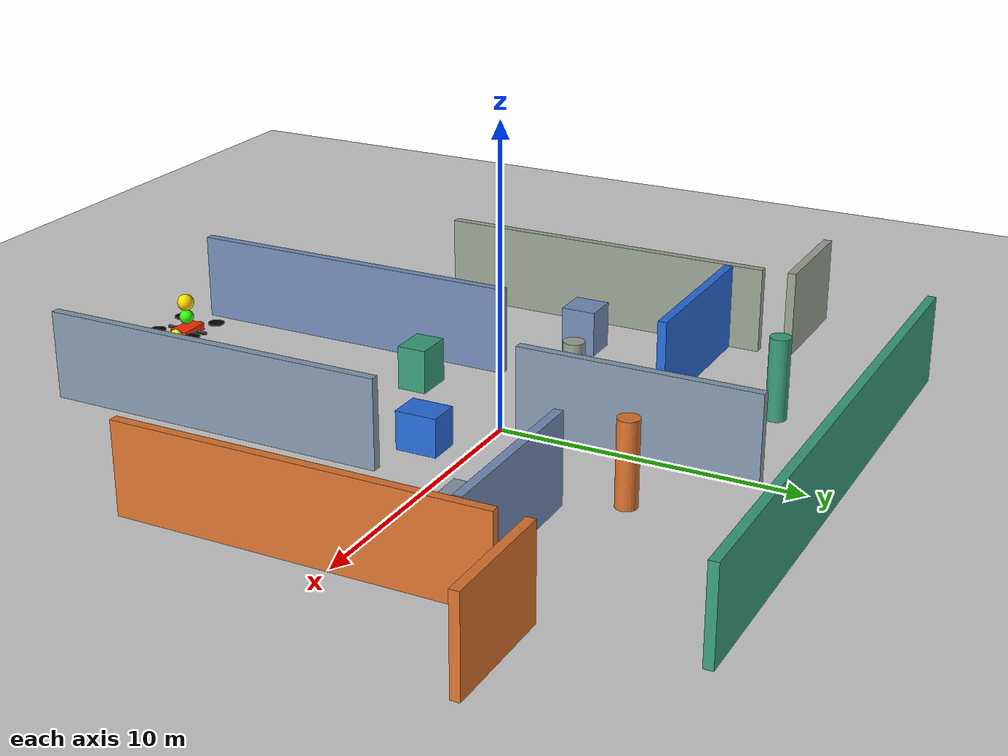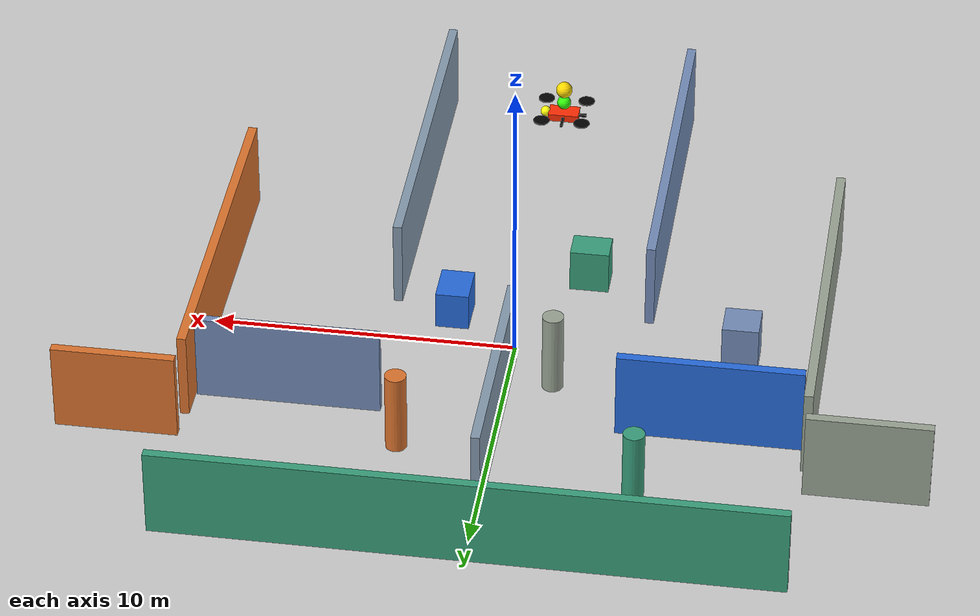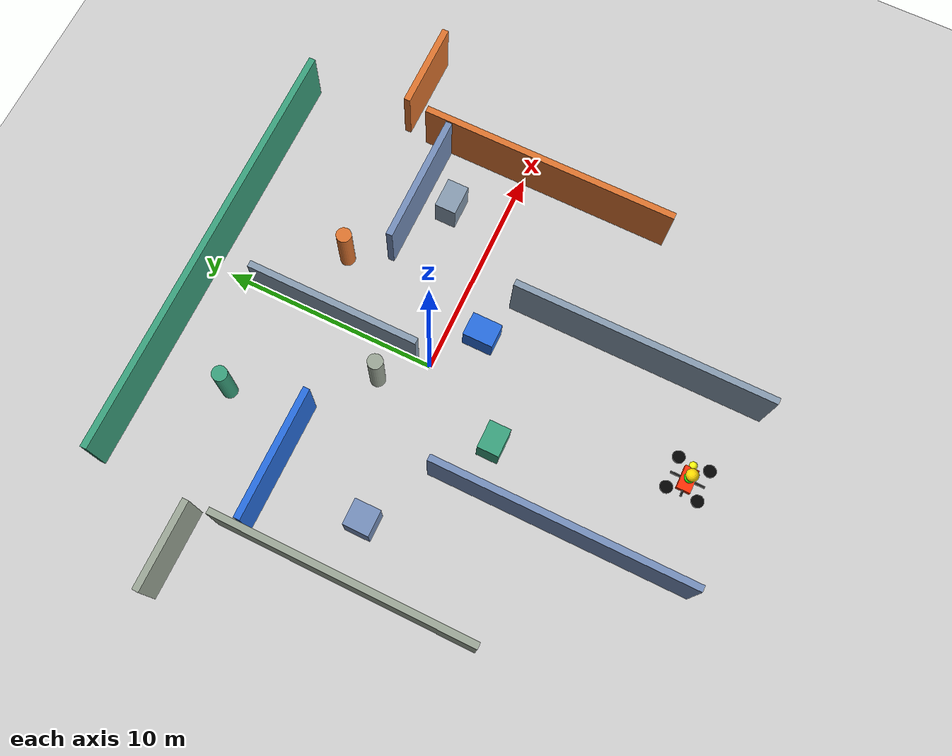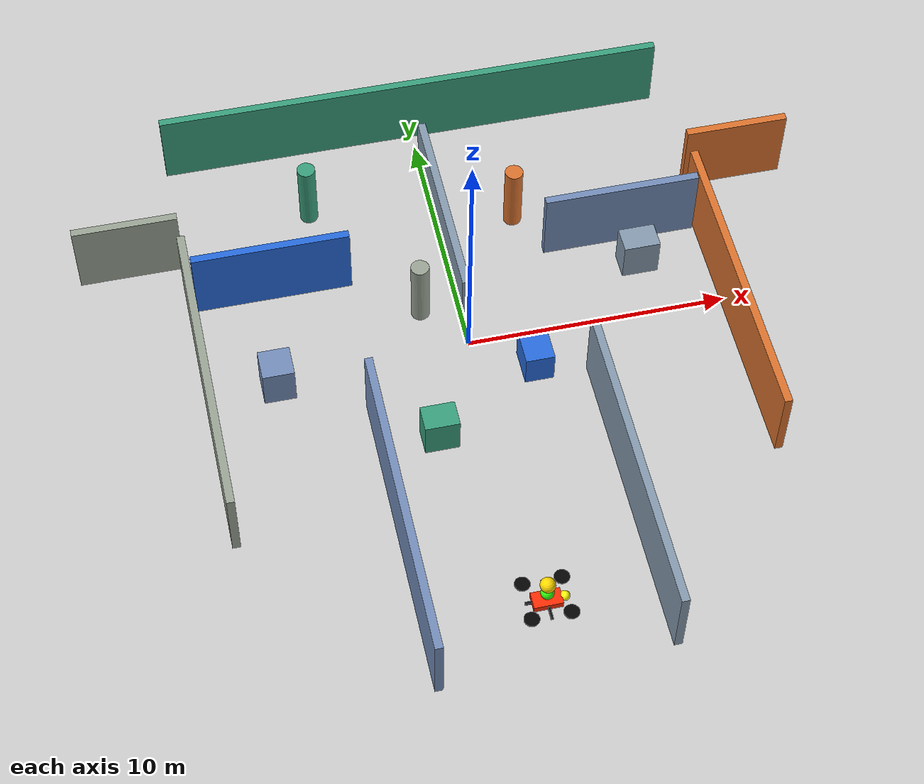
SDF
<?xml version='1.0' encoding='utf-8'?>
<sdf version="1.6">
  <world name="fuel_exploration_large_aligned">
    <include>
      <uri>model://sun</uri>
    </include>
    <include>
      <uri>model://ground_plane</uri>
    </include>
    <model name="south_corridor_left_wall">
      <static>true</static>
      <pose>-4.2 -8 1.5 0 0 0</pose>
      <link name="link">
        <collision name="collision">
          <geometry>
            <box>
              <size>0.3 12 3</size>
            </box>
          </geometry>
        </collision>
        <visual name="visual">
          <geometry>
            <box>
              <size>0.3 12 3</size>
            </box>
          </geometry>
          <material>
            <ambient>0.45 0.55 0.72 1</ambient>
            <diffuse>0.45 0.55 0.72 1</diffuse>
          </material>
        </visual>
      </link>
    </model>
    <model name="south_corridor_right_wall">
      <static>true</static>
      <pose>4.2 -8 1.5 0 0 0</pose>
      <link name="link">
        <collision name="collision">
          <geometry>
            <box>
              <size>0.3 12 3</size>
            </box>
          </geometry>
        </collision>
        <visual name="visual">
          <geometry>
            <box>
              <size>0.3 12 3</size>
            </box>
          </geometry>
          <material>
            <ambient>0.52 0.6 0.68 1</ambient>
            <diffuse>0.52 0.6 0.68 1</diffuse>
          </material>
        </visual>
      </link>
    </model>
    <model name="west_room_outer_wall">
      <static>true</static>
      <pose>-10 -1 1.5 0 0 0</pose>
      <link name="link">
        <collision name="collision">
          <geometry>
            <box>
              <size>0.3 12 3</size>
            </box>
          </geometry>
        </collision>
        <visual name="visual">
          <geometry>
            <box>
              <size>0.3 12 3</size>
            </box>
          </geometry>
          <material>
            <ambient>0.6 0.64 0.58 1</ambient>
            <diffuse>0.6 0.64 0.58 1</diffuse>
          </material>
        </visual>
      </link>
    </model>
    <model name="east_room_outer_wall">
      <static>true</static>
      <pose>10 -1 1.5 0 0 0</pose>
      <link name="link">
        <collision name="collision">
          <geometry>
            <box>
              <size>0.3 12 3</size>
            </box>
          </geometry>
        </collision>
        <visual name="visual">
          <geometry>
            <box>
              <size>0.3 12 3</size>
            </box>
          </geometry>
          <material>
            <ambient>0.86 0.45 0.18 1</ambient>
            <diffuse>0.86 0.45 0.18 1</diffuse>
          </material>
        </visual>
      </link>
    </model>
    <model name="north_back_wall">
      <static>true</static>
      <pose>0 10.8 1.5 0 0 0</pose>
      <link name="link">
        <collision name="collision">
          <geometry>
            <box>
              <size>20 0.3 3</size>
            </box>
          </geometry>
        </collision>
        <visual name="visual">
          <geometry>
            <box>
              <size>20 0.3 3</size>
            </box>
          </geometry>
          <material>
            <ambient>0.22 0.62 0.48 1</ambient>
            <diffuse>0.22 0.62 0.48 1</diffuse>
          </material>
        </visual>
      </link>
    </model>
    <model name="west_room_inner_wall">
      <static>true</static>
      <pose>-6.8 3.8 1.5 0 0 0</pose>
      <link name="link">
        <collision name="collision">
          <geometry>
            <box>
              <size>6 0.3 3</size>
            </box>
          </geometry>
        </collision>
        <visual name="visual">
          <geometry>
            <box>
              <size>6 0.3 3</size>
            </box>
          </geometry>
          <material>
            <ambient>0.15 0.42 0.86 1</ambient>
            <diffuse>0.15 0.42 0.86 1</diffuse>
          </material>
        </visual>
      </link>
    </model>
    <model name="east_room_inner_wall">
      <static>true</static>
      <pose>6.8 3.8 1.5 0 0 0</pose>
      <link name="link">
        <collision name="collision">
          <geometry>
            <box>
              <size>6 0.3 3</size>
            </box>
          </geometry>
        </collision>
        <visual name="visual">
          <geometry>
            <box>
              <size>6 0.3 3</size>
            </box>
          </geometry>
          <material>
            <ambient>0.45 0.55 0.72 1</ambient>
            <diffuse>0.45 0.55 0.72 1</diffuse>
          </material>
        </visual>
      </link>
    </model>
    <model name="center_room_divider">
      <static>true</static>
      <pose>0 4.6 1.5 0 0 0</pose>
      <link name="link">
        <collision name="collision">
          <geometry>
            <box>
              <size>0.3 8 3</size>
            </box>
          </geometry>
        </collision>
        <visual name="visual">
          <geometry>
            <box>
              <size>0.3 8 3</size>
            </box>
          </geometry>
          <material>
            <ambient>0.52 0.6 0.68 1</ambient>
            <diffuse>0.52 0.6 0.68 1</diffuse>
          </material>
        </visual>
      </link>
    </model>
    <model name="west_dead_end_wall">
      <static>true</static>
      <pose>-12 6 1.5 0 0 0</pose>
      <link name="link">
        <collision name="collision">
          <geometry>
            <box>
              <size>4 0.3 3</size>
            </box>
          </geometry>
        </collision>
        <visual name="visual">
          <geometry>
            <box>
              <size>4 0.3 3</size>
            </box>
          </geometry>
          <material>
            <ambient>0.6 0.64 0.58 1</ambient>
            <diffuse>0.6 0.64 0.58 1</diffuse>
          </material>
        </visual>
      </link>
    </model>
    <model name="east_dead_end_wall">
      <static>true</static>
      <pose>12 6 1.5 0 0 0</pose>
      <link name="link">
        <collision name="collision">
          <geometry>
            <box>
              <size>4 0.3 3</size>
            </box>
          </geometry>
        </collision>
        <visual name="visual">
          <geometry>
            <box>
              <size>4 0.3 3</size>
            </box>
          </geometry>
          <material>
            <ambient>0.86 0.45 0.18 1</ambient>
            <diffuse>0.86 0.45 0.18 1</diffuse>
          </material>
        </visual>
      </link>
    </model>
    <model name="box_obstacle_01">
      <static>true</static>
      <pose>-2 -4 0.75 0 0 0</pose>
      <link name="link">
        <collision name="collision">
          <geometry>
            <box>
              <size>1.3 1 1.5</size>
            </box>
          </geometry>
        </collision>
        <visual name="visual">
          <geometry>
            <box>
              <size>1.3 1 1.5</size>
            </box>
          </geometry>
          <material>
            <ambient>0.22 0.62 0.48 1</ambient>
            <diffuse>0.22 0.62 0.48 1</diffuse>
          </material>
        </visual>
      </link>
    </model>
    <model name="box_obstacle_02">
      <static>true</static>
      <pose>2.2 -1.5 0.65 0 0 0</pose>
      <link name="link">
        <collision name="collision">
          <geometry>
            <box>
              <size>1.1 1.4 1.3</size>
            </box>
          </geometry>
        </collision>
        <visual name="visual">
          <geometry>
            <box>
              <size>1.1 1.4 1.3</size>
            </box>
          </geometry>
          <material>
            <ambient>0.15 0.42 0.86 1</ambient>
            <diffuse>0.15 0.42 0.86 1</diffuse>
          </material>
        </visual>
      </link>
    </model>
    <model name="box_obstacle_03">
      <static>true</static>
      <pose>-7.4 -0.5 0.8 0 0 0</pose>
      <link name="link">
        <collision name="collision">
          <geometry>
            <box>
              <size>1.2 1.2 1.6</size>
            </box>
          </geometry>
        </collision>
        <visual name="visual">
          <geometry>
            <box>
              <size>1.2 1.2 1.6</size>
            </box>
          </geometry>
          <material>
            <ambient>0.45 0.55 0.72 1</ambient>
            <diffuse>0.45 0.55 0.72 1</diffuse>
          </material>
        </visual>
      </link>
    </model>
    <model name="box_obstacle_04">
      <static>true</static>
      <pose>7.2 2.4 0.8 0 0 0</pose>
      <link name="link">
        <collision name="collision">
          <geometry>
            <box>
              <size>1.4 1 1.6</size>
            </box>
          </geometry>
        </collision>
        <visual name="visual">
          <geometry>
            <box>
              <size>1.4 1 1.6</size>
            </box>
          </geometry>
          <material>
            <ambient>0.52 0.6 0.68 1</ambient>
            <diffuse>0.52 0.6 0.68 1</diffuse>
          </material>
        </visual>
      </link>
    </model>
    <model name="pillar_01">
      <static>true</static>
      <pose>-1.5 1.8 1.4 0 0 0</pose>
      <link name="link">
        <collision name="collision">
          <geometry>
            <cylinder>
              <radius>0.35</radius>
              <length>2.8</length>
            </cylinder>
          </geometry>
        </collision>
        <visual name="visual">
          <geometry>
            <cylinder>
              <radius>0.35</radius>
              <length>2.8</length>
            </cylinder>
          </geometry>
          <material>
            <ambient>0.6 0.64 0.58 1</ambient>
            <diffuse>0.6 0.64 0.58 1</diffuse>
          </material>
        </visual>
      </link>
    </model>
    <model name="pillar_02">
      <static>true</static>
      <pose>3 5.6 1.4 0 0 0</pose>
      <link name="link">
        <collision name="collision">
          <geometry>
            <cylinder>
              <radius>0.35</radius>
              <length>2.8</length>
            </cylinder>
          </geometry>
        </collision>
        <visual name="visual">
          <geometry>
            <cylinder>
              <radius>0.35</radius>
              <length>2.8</length>
            </cylinder>
          </geometry>
          <material>
            <ambient>0.86 0.45 0.18 1</ambient>
            <diffuse>0.86 0.45 0.18 1</diffuse>
          </material>
        </visual>
      </link>
    </model>
    <model name="pillar_03">
      <static>true</static>
      <pose>-4.8 7.4 1.4 0 0 0</pose>
      <link name="link">
        <collision name="collision">
          <geometry>
            <cylinder>
              <radius>0.35</radius>
              <length>2.8</length>
            </cylinder>
          </geometry>
        </collision>
        <visual name="visual">
          <geometry>
            <cylinder>
              <radius>0.35</radius>
              <length>2.8</length>
            </cylinder>
          </geometry>
          <material>
            <ambient>0.22 0.62 0.48 1</ambient>
            <diffuse>0.22 0.62 0.48 1</diffuse>
          </material>
        </visual>
      </link>
    </model>
    <include>
      <name>fuel_simple_uav</name>
      <uri>model://simple_uav</uri>
      <pose>0 -12 1.2 0 0 0</pose>
    </include>
    <model name="fuel_simple_uav_beacon">
      <static>true</static>
      <pose>0 -12 2.2 0 0 0</pose>
      <link name="link">
        <visual name="beacon_visual">
          <geometry>
            <sphere>
              <radius>0.28</radius>
            </sphere>
          </geometry>
          <material>
            <ambient>1 0.85 0 1</ambient>
            <diffuse>1 0.85 0 1</diffuse>
          </material>
        </visual>
      </link>
    </model>
  </world>
</sdf>

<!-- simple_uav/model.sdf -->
<sdf version="1.6">
  <model name="simple_uav">
    <static>false</static>
    <link name="base_link">
      <pose>0 0 0 0 0 0</pose>
      <gravity>false</gravity>
      <kinematic>true</kinematic>
      <inertial>
        <mass>0.2</mass>
        <inertia><ixx>0.004</ixx><iyy>0.004</iyy><izz>0.008</izz></inertia>
      </inertial>
      <collision name="body_collision">
        <geometry><box><size>0.32 0.22 0.10</size></box></geometry>
      </collision>
      <visual name="body_visual">
        <geometry><box><size>1.05 0.62 0.26</size></box></geometry>
        <material>
          <ambient>1.00 0.18 0.02 1</ambient>
          <diffuse>1.00 0.18 0.02 1</diffuse>
        </material>
      </visual>
      <visual name="front_sensor_visual">
        <pose>0.64 0 0.05 0 0 0</pose>
        <geometry><sphere><radius>0.18</radius></sphere></geometry>
        <material>
          <ambient>1.00 1.00 0.05 1</ambient>
          <diffuse>1.00 1.00 0.05 1</diffuse>
        </material>
      </visual>
      <visual name="high_visibility_beacon">
        <pose>0 0 0.48 0 0 0</pose>
        <geometry><sphere><radius>0.24</radius></sphere></geometry>
        <material>
          <ambient>0.20 1.00 0.05 1</ambient>
          <diffuse>0.20 1.00 0.05 1</diffuse>
          <emissive>0.20 1.00 0.05 1</emissive>
        </material>
      </visual>
      <visual name="arm_x_visual">
        <geometry><box><size>1.55 0.09 0.09</size></box></geometry>
        <material>
          <ambient>0.05 0.05 0.05 1</ambient>
          <diffuse>0.05 0.05 0.05 1</diffuse>
        </material>
      </visual>
      <visual name="arm_y_visual">
        <geometry><box><size>0.09 1.55 0.09</size></box></geometry>
        <material>
          <ambient>0.05 0.05 0.05 1</ambient>
          <diffuse>0.05 0.05 0.05 1</diffuse>
        </material>
      </visual>
      <visual name="rotor_front_right">
        <pose>0.70 0.70 0.13 0 0 0</pose>
        <geometry><cylinder><radius>0.28</radius><length>0.035</length></cylinder></geometry>
        <material><ambient>0.01 0.01 0.01 1</ambient><diffuse>0.01 0.01 0.01 1</diffuse></material>
      </visual>
      <visual name="rotor_front_left">
        <pose>0.70 -0.70 0.13 0 0 0</pose>
        <geometry><cylinder><radius>0.28</radius><length>0.035</length></cylinder></geometry>
        <material><ambient>0.01 0.01 0.01 1</ambient><diffuse>0.01 0.01 0.01 1</diffuse></material>
      </visual>
      <visual name="rotor_rear_right">
        <pose>-0.70 0.70 0.13 0 0 0</pose>
        <geometry><cylinder><radius>0.28</radius><length>0.035</length></cylinder></geometry>
        <material><ambient>0.01 0.01 0.01 1</ambient><diffuse>0.01 0.01 0.01 1</diffuse></material>
      </visual>
      <visual name="rotor_rear_left">
        <pose>-0.70 -0.70 0.13 0 0 0</pose>
        <geometry><cylinder><radius>0.28</radius><length>0.035</length></cylinder></geometry>
        <material><ambient>0.01 0.01 0.01 1</ambient><diffuse>0.01 0.01 0.01 1</diffuse></material>
      </visual>
    </link>
  </model>
</sdf>
